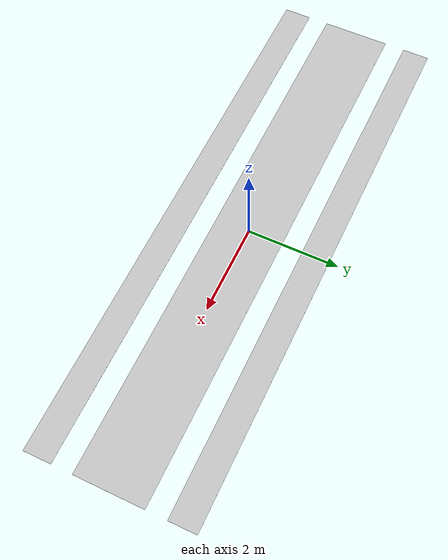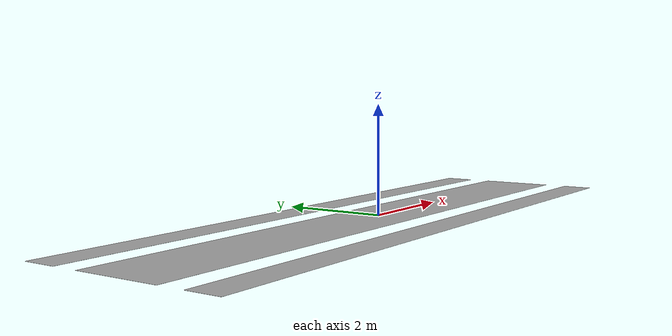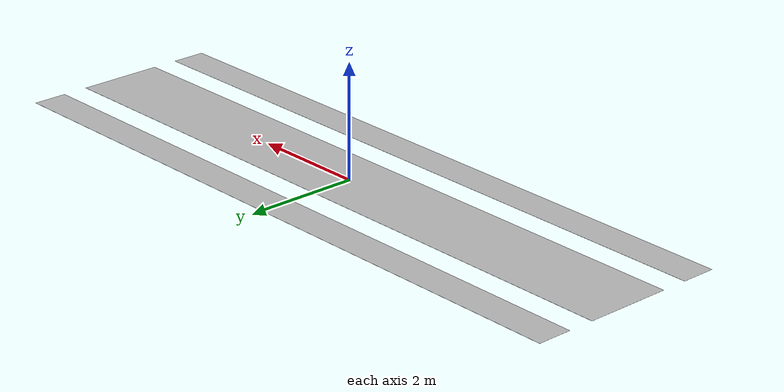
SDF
<?xml version="1.0" ?>
<!-- Three flower-textured floor strips as per rulebook Fig.7 -->
<sdf version="1.6">
  <model name="textured_floor">
    <static>true</static>
    <link name="link">

      <!-- Left side passage strip (Y = -1.5m) -->
      <visual name="left_strip">
        <pose>0 -1.5 0 0 0 0</pose>
        <geometry><box><size>12 0.6 0.002</size></box></geometry>
        <material>
          <script>
            <uri>model://textured_floor/materials/scripts</uri>
            <uri>model://textured_floor/materials/textures</uri>
            <name>FlowerFloorMaterial</name>
          </script>
        </material>
      </visual>

      <!-- Center obstacle course strip (Y = 0) -->
      <visual name="center_strip">
        <pose>0 0 0 0 0 0</pose>
        <geometry><box><size>12 1.5 0.002</size></box></geometry>
        <material>
          <script>
            <uri>model://textured_floor/materials/scripts</uri>
            <uri>model://textured_floor/materials/textures</uri>
            <name>FlowerFloorMaterial</name>
          </script>
        </material>
      </visual>

      <!-- Right side passage strip (Y = +1.5m) -->
      <visual name="right_strip">
        <pose>0 1.5 0 0 0 0</pose>
        <geometry><box><size>12 0.6 0.002</size></box></geometry>
        <material>
          <script>
            <uri>model://textured_floor/materials/scripts</uri>
            <uri>model://textured_floor/materials/textures</uri>
            <name>FlowerFloorMaterial</name>
          </script>
        </material>
      </visual>

    </link>
  </model>
</sdf>
